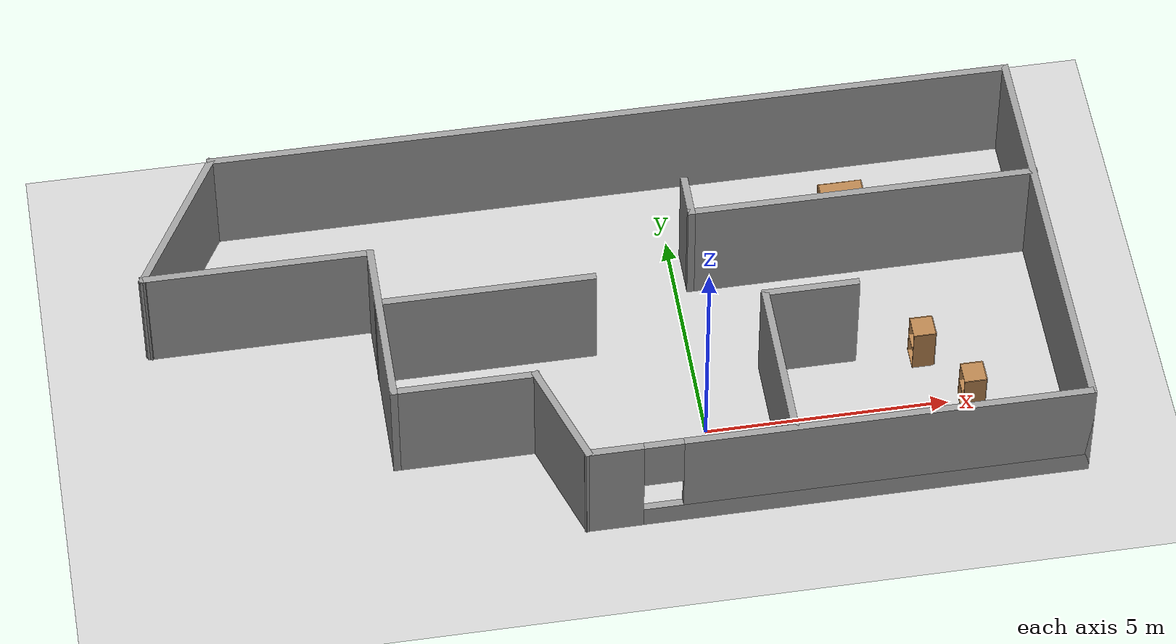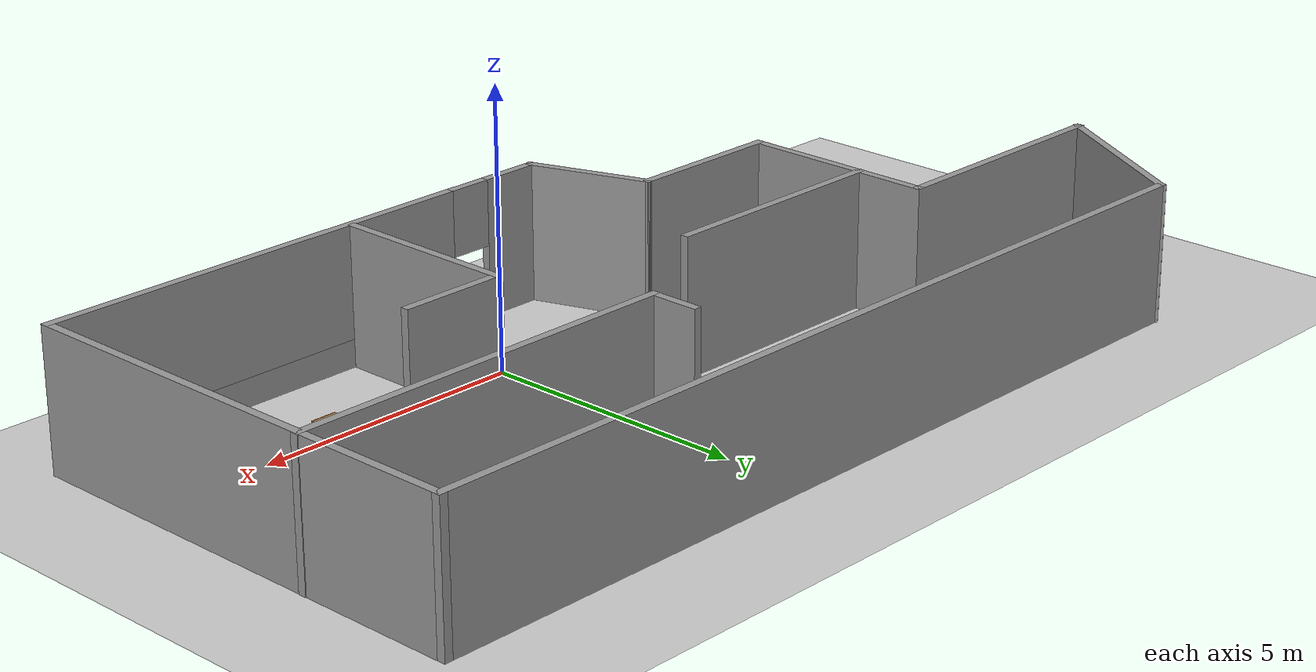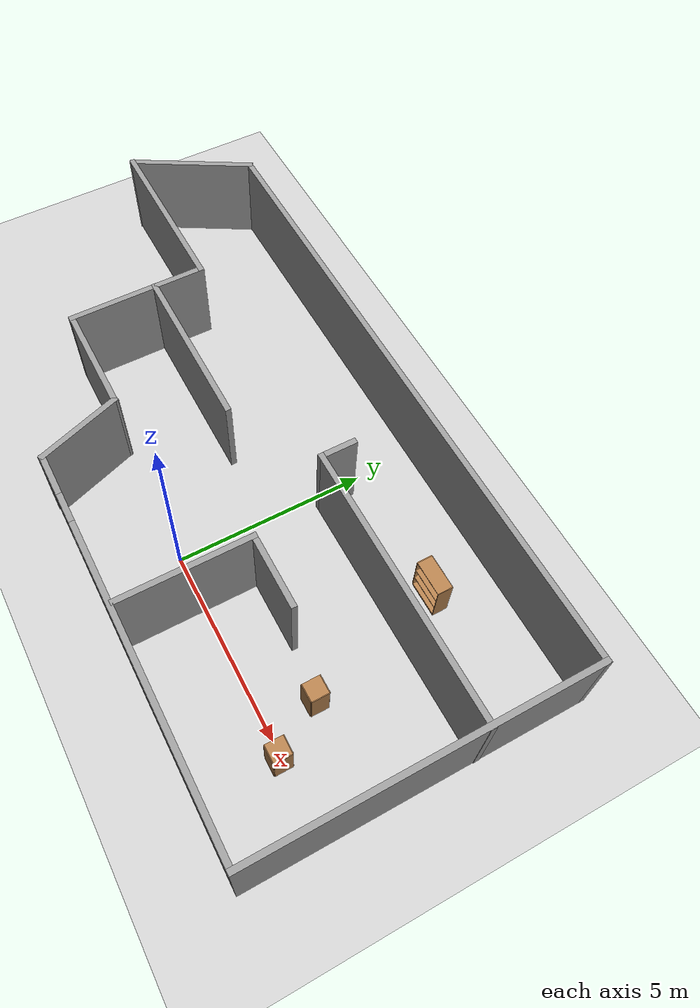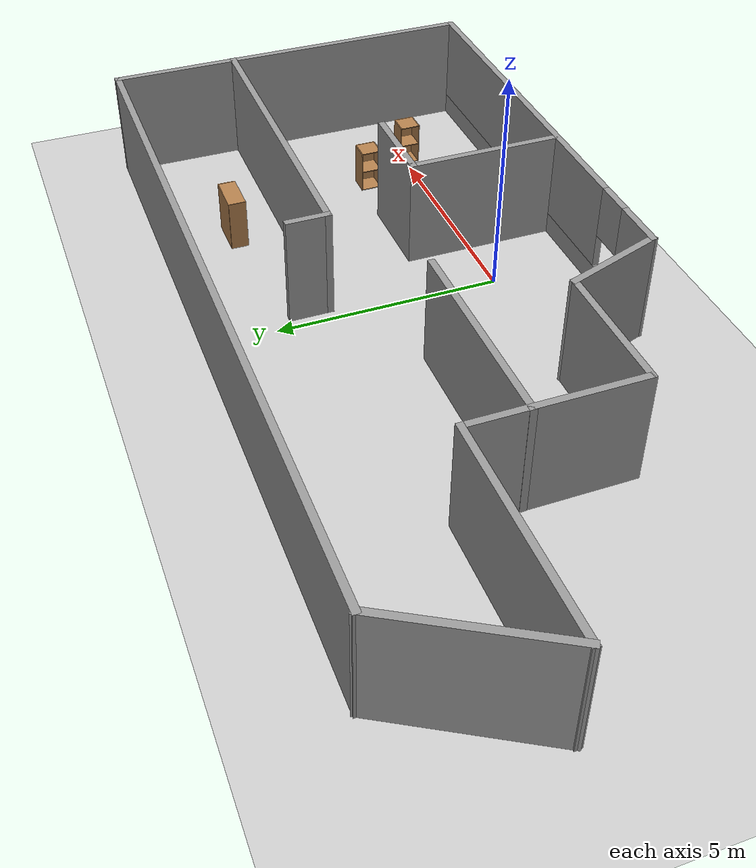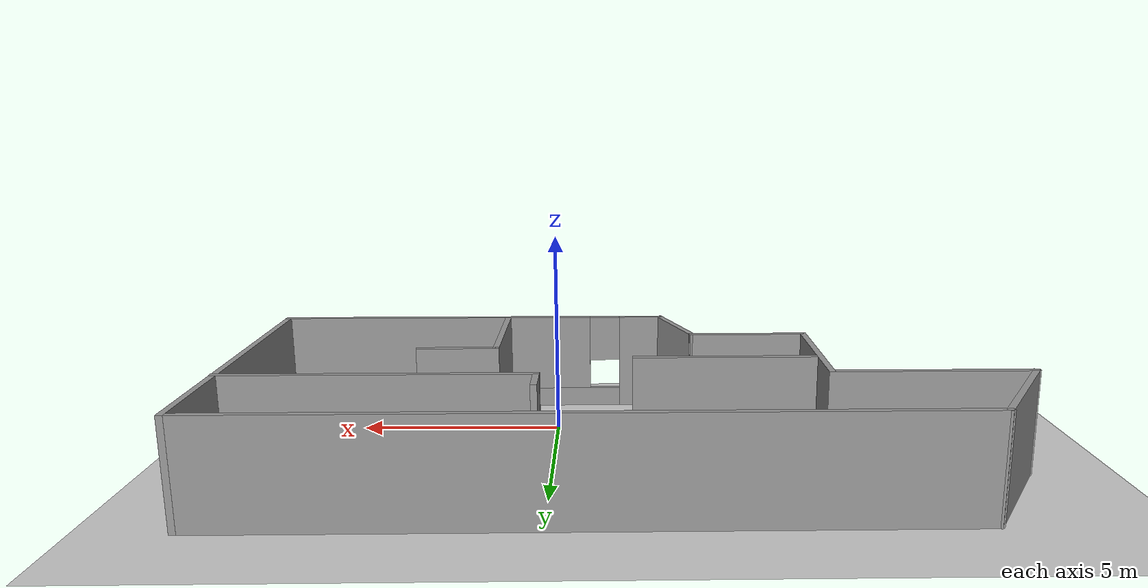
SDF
<sdf version="1.7">
 <world name="default">
  <light name="sun" type="directional">
   <pose>0 0 10 0 -0 0</pose>
   <diffuse>0.8 0.8 0.8 1</diffuse>
   <specular>0.2 0.2 0.2 1</specular>
   <attenuation>
    <range>1000</range>
    <constant>0.9</constant>
    <linear>0.01</linear>
    <quadratic>0.001</quadratic>
   </attenuation>
   <direction>-0.5 0.1 -0.9</direction>
   <spot><inner_angle>0</inner_angle><outer_angle>0</outer_angle><falloff>0</falloff></spot>
  </light>
  <model name="ground_plane">
   <static>1</static>
   <link name="link">
    <collision name="collision">
     <geometry><plane><normal>0 0 1</normal><size>100 100</size></plane></geometry>
     <surface><friction><ode><mu>100</mu><mu2>50</mu2></ode></friction></surface>
    </collision>
    <visual name="visual">
     <cast_shadows>0</cast_shadows>
     <geometry><plane><normal>0 0 1</normal><size>100 100</size></plane></geometry>
     <material>
      <script><uri>file://media/materials/scripts/gazebo.material</uri><name>Gazebo/Grey</name></script>
     </material>
    </visual>
   </link>
  </model>
  <gravity>0 0 -9.8</gravity>
  <magnetic_field>6e-06 2.3e-05 -4.2e-05</magnetic_field>
  <atmosphere type="adiabatic"/>
  <physics type="ode">
   <max_step_size>0.001</max_step_size>
   <real_time_factor>1</real_time_factor>
   <real_time_update_rate>1000</real_time_update_rate>
  </physics>
  <scene><ambient>0.4 0.4 0.4 1</ambient><background>0.7 0.7 0.7 1</background><shadows>1</shadows></scene>
  <audio><device>default</device></audio>
  <spherical_coordinates>
   <surface_model>EARTH_WGS84</surface_model>
   <latitude_deg>0</latitude_deg>
   <longitude_deg>0</longitude_deg>
   <elevation>0</elevation>
   <heading_deg>0</heading_deg>
  </spherical_coordinates>
  <model name="task1.world">
   <pose>-1.76242 2.27649 0.004845 0 -0 0</pose>
   <link name="Wall_0">
    <pose>4.09488 -4.30354 0 0 -0 0</pose>
    <visual name="Wall_0_Visual_0">
     <pose>-4.53371 0 1.25 0 -0 0</pose>
     <geometry><box><size>1.18259 0.15 2.5</size></box></geometry>
     <material>
      <script><uri>file://media/materials/scripts/gazebo.material</uri><name>Gazebo/Grey</name></script>
      <ambient>1 1 1 1</ambient>
     </material>
     <meta><layer>0</layer></meta>
    </visual>
    <collision name="Wall_0_Collision_0">
     <geometry><box><size>1.18259 0.15 2.5</size></box></geometry>
     <pose>-4.53371 0 1.25 0 -0 0</pose>
    </collision>
    <visual name="Wall_0_Visual_1">
     <pose>0.591295 0 0.25 0 -0 0</pose>
     <geometry><box><size>9.06741 0.15 0.5</size></box></geometry>
     <material>
      <script><uri>file://media/materials/scripts/gazebo.material</uri><name>Gazebo/Grey</name></script>
      <ambient>1 1 1 1</ambient>
     </material>
     <meta><layer>0</layer></meta>
    </visual>
    <collision name="Wall_0_Collision_1">
     <geometry><box><size>9.06741 0.15 0.5</size></box></geometry>
     <pose>0.591295 0 0.25 0 -0 0</pose>
    </collision>
    <visual name="Wall_0_Visual_2">
     <pose>0.991295 0 1.5 0 -0 0</pose>
     <geometry><box><size>8.26741 0.15 2</size></box></geometry>
     <material>
      <script><uri>file://media/materials/scripts/gazebo.material</uri><name>Gazebo/Grey</name></script>
      <ambient>1 1 1 1</ambient>
     </material>
     <meta><layer>0</layer></meta>
    </visual>
    <collision name="Wall_0_Collision_2">
     <geometry><box><size>8.26741 0.15 2</size></box></geometry>
     <pose>0.991295 0 1.5 0 -0 0</pose>
    </collision>
    <visual name="Wall_0_Visual_3">
     <pose>-3.54241 0 1.9 0 -0 0</pose>
     <geometry><box><size>0.8 0.15 1.2</size></box></geometry>
     <material>
      <script><uri>file://media/materials/scripts/gazebo.material</uri><name>Gazebo/Grey</name></script>
      <ambient>1 1 1 1</ambient>
     </material>
     <meta><layer>0</layer></meta>
    </visual>
    <collision name="Wall_0_Collision_3">
     <geometry><box><size>0.8 0.15 1.2</size></box></geometry>
     <pose>-3.54241 0 1.9 0 -0 0</pose>
    </collision>
   </link>
   <link name="Wall_1">
    <collision name="Wall_1_Collision">
     <geometry><box><size>8.75 0.15 2.5</size></box></geometry>
     <pose>0 0 1.25 0 -0 0</pose>
    </collision>
    <visual name="Wall_1_Visual">
     <pose>0 0 1.25 0 -0 0</pose>
     <geometry><box><size>8.75 0.15 2.5</size></box></geometry>
     <material>
      <script><uri>file://media/materials/scripts/gazebo.material</uri><name>Gazebo/Grey</name></script>
      <ambient>1 1 1 1</ambient>
     </material>
     <meta><layer>0</layer></meta>
    </visual>
    <pose>9.14488 -0.003537 0 0 -0 1.5708</pose>
   </link>
   <link name="Wall_11">
    <collision name="Wall_11_Collision">
     <geometry><box><size>7.25 0.15 2.5</size></box></geometry>
     <pose>0 0 1.25 0 -0 0</pose>
    </collision>
    <visual name="Wall_11_Visual">
     <pose>0 0 1.25 0 -0 0</pose>
     <geometry><box><size>7.25 0.15 2.5</size></box></geometry>
     <material>
      <script><uri>file://media/materials/scripts/gazebo.material</uri><name>Gazebo/Grey</name></script>
      <ambient>1 1 1 1</ambient>
     </material>
     <meta><layer>0</layer></meta>
    </visual>
    <pose>5.60758 1.45614 0 0 -0 3.14159</pose>
   </link>
   <link name="Wall_12">
    <collision name="Wall_12_Collision">
     <geometry><box><size>1 0.15 2.5</size></box></geometry>
     <pose>0 0 1.25 0 -0 0</pose>
    </collision>
    <visual name="Wall_12_Visual">
     <pose>0 0 1.25 0 -0 0</pose>
     <geometry><box><size>1 0.15 2.5</size></box></geometry>
     <material>
      <script><uri>file://media/materials/scripts/gazebo.material</uri><name>Gazebo/Grey</name></script>
      <ambient>1 1 1 1</ambient>
     </material>
     <meta><layer>0</layer></meta>
    </visual>
    <pose>2.05758 1.88114 0 0 -0 1.5708</pose>
   </link>
   <link name="Wall_14">
    <collision name="Wall_14_Collision">
     <geometry><box><size>3.5 0.15 2.5</size></box></geometry>
     <pose>0 0 1.25 0 -0 0</pose>
    </collision>
    <visual name="Wall_14_Visual">
     <pose>0 0 1.25 0 -0 0</pose>
     <geometry><box><size>3.5 0.15 2.5</size></box></geometry>
     <material>
      <script><uri>file://media/materials/scripts/gazebo.material</uri><name>Gazebo/Grey</name></script>
      <ambient>1 1 1 1</ambient>
     </material>
     <meta><layer>0</layer></meta>
    </visual>
    <pose>3.17598 -2.53564 0 0 -0 1.5708</pose>
   </link>
   <link name="Wall_15">
    <collision name="Wall_15_Collision">
     <geometry><box><size>2 0.15 2.5</size></box></geometry>
     <pose>0 0 1.25 0 -0 0</pose>
    </collision>
    <visual name="Wall_15_Visual">
     <pose>0 0 1.25 0 -0 0</pose>
     <geometry><box><size>2 0.15 2.5</size></box></geometry>
     <material>
      <script><uri>file://media/materials/scripts/gazebo.material</uri><name>Gazebo/Grey</name></script>
      <ambient>1 1 1 1</ambient>
     </material>
     <meta><layer>0</layer></meta>
    </visual>
    <pose>4.10098 -0.860638 0 0 -0 0</pose>
   </link>
   <link name="Wall_17">
    <collision name="Wall_17_Collision">
     <geometry><box><size>4.5 0.15 2.5</size></box></geometry>
     <pose>0 0 1.25 0 -0 0</pose>
    </collision>
    <visual name="Wall_17_Visual">
     <pose>0 0 1.25 0 -0 0</pose>
     <geometry><box><size>4.5 0.15 2.5</size></box></geometry>
     <material>
      <script><uri>file://media/materials/scripts/gazebo.material</uri><name>Gazebo/Grey</name></script>
      <ambient>1 1 1 1</ambient>
     </material>
     <meta><layer>0</layer></meta>
    </visual>
    <pose>-2.36214 0.091917 0 0 -0 0</pose>
   </link>
   <link name="Wall_2">
    <collision name="Wall_2_Collision">
     <geometry><box><size>16.75 0.15 2.5</size></box></geometry>
     <pose>0 0 1.25 0 -0 0</pose>
    </collision>
    <visual name="Wall_2_Visual">
     <pose>0 0 1.25 0 -0 0</pose>
     <geometry><box><size>16.75 0.15 2.5</size></box></geometry>
     <material>
      <script><uri>file://media/materials/scripts/gazebo.material</uri><name>Gazebo/Grey</name></script>
      <ambient>1 1 1 1</ambient>
     </material>
     <meta><layer>0</layer></meta>
    </visual>
    <pose>0.844876 4.29646 0 0 -0 3.14159</pose>
   </link>
   <link name="Wall_3">
    <collision name="Wall_3_Collision">
     <geometry><box><size>3.5 0.15 2.5</size></box></geometry>
     <pose>0 0 1.25 0 -0 0</pose>
    </collision>
    <visual name="Wall_3_Visual">
     <pose>0 0 1.25 0 -0 0</pose>
     <geometry><box><size>3.5 0.15 2.5</size></box></geometry>
     <material>
      <script><uri>file://media/materials/scripts/gazebo.material</uri><name>Gazebo/Grey</name></script>
      <ambient>1 1 1 1</ambient>
     </material>
     <meta><layer>0</layer></meta>
    </visual>
    <pose>-8.29262 2.84587 0 0 -0 -2.0944</pose>
   </link>
   <link name="Wall_4">
    <collision name="Wall_4_Collision">
     <geometry><box><size>4.75 0.15 2.5</size></box></geometry>
     <pose>0 0 1.25 0 -0 0</pose>
    </collision>
    <visual name="Wall_4_Visual">
     <pose>0 0 1.25 0 -0 0</pose>
     <geometry><box><size>4.75 0.15 2.5</size></box></geometry>
     <material>
      <script><uri>file://media/materials/scripts/gazebo.material</uri><name>Gazebo/Grey</name></script>
      <ambient>1 1 1 1</ambient>
     </material>
     <meta><layer>0</layer></meta>
    </visual>
    <pose>-6.83012 1.39528 0 0 -0 0</pose>
   </link>
   <link name="Wall_5">
    <collision name="Wall_5_Collision">
     <geometry><box><size>3.75 0.15 2.5</size></box></geometry>
     <pose>0 0 1.25 0 -0 0</pose>
    </collision>
    <visual name="Wall_5_Visual">
     <pose>0 0 1.25 0 -0 0</pose>
     <geometry><box><size>3.75 0.15 2.5</size></box></geometry>
     <material>
      <script><uri>file://media/materials/scripts/gazebo.material</uri><name>Gazebo/Grey</name></script>
      <ambient>1 1 1 1</ambient>
     </material>
     <meta><layer>0</layer></meta>
    </visual>
    <pose>-4.53012 -0.404722 0 0 -0 -1.5708</pose>
   </link>
   <link name="Wall_6">
    <collision name="Wall_6_Collision">
     <geometry><box><size>3 0.15 2.5</size></box></geometry>
     <pose>0 0 1.25 0 -0 0</pose>
    </collision>
    <visual name="Wall_6_Visual">
     <pose>0 0 1.25 0 -0 0</pose>
     <geometry><box><size>3 0.15 2.5</size></box></geometry>
     <material>
      <script><uri>file://media/materials/scripts/gazebo.material</uri><name>Gazebo/Grey</name></script>
      <ambient>1 1 1 1</ambient>
     </material>
     <meta><layer>0</layer></meta>
    </visual>
    <pose>-3.10512 -2.20472 0 0 -0 0</pose>
   </link>
   <link name="Wall_9">
    <collision name="Wall_9_Collision">
     <geometry><box><size>2.37051 0.15 2.5</size></box></geometry>
     <pose>0 0 1.25 0 -0 0</pose>
    </collision>
    <visual name="Wall_9_Visual">
     <pose>0 0 1.25 0 -0 0</pose>
     <geometry><box><size>2.37051 0.15 2.5</size></box></geometry>
     <material>
      <script><uri>file://media/materials/scripts/gazebo.material</uri><name>Gazebo/Grey</name></script>
      <ambient>1 1 1 1</ambient>
     </material>
     <meta><layer>0</layer></meta>
    </visual>
    <pose>-1.31762 -3.25413 0 0 -0 -1.2382</pose>
   </link>
   <static>1</static>
  </model>
  <model name="cabinet">
   <static>1</static>
   <link name="cabinet_bottom_plate">
    <inertial>
     <pose>0 0 -1 0 -0 0</pose>
     <inertia><ixx>2.05</ixx><ixy>0</ixy><ixz>0</ixz><iyy>2.05</iyy><iyz>0</iyz><izz>2.05</izz></inertia>
     <mass>25</mass>
    </inertial>
    <collision name="cabinet_bottom_plate_geom">
     <pose>0 0 0.01 0 -0 0</pose>
     <geometry><box><size>0.45 0.45 0.02</size></box></geometry>
    </collision>
    <visual name="cabinet_bottom_plate_geom_visual">
     <pose>0 0 0.01 0 -0 0</pose>
     <geometry><box><size>0.45 0.45 0.02</size></box></geometry>
     <material>
      <script><uri>file://media/materials/scripts/gazebo.material</uri><name>Gazebo/Wood</name></script>
     </material>
    </visual>
    <collision name="cabinet_bottom_plate_geom_cabinet_back_plate">
     <pose>0.235 0 0.51 0 -0 0</pose>
     <geometry><box><size>0.02 0.45 1.02</size></box></geometry>
    </collision>
    <visual name="cabinet_bottom_plate_geom_cabinet_back_plate_visual">
     <pose>0.235 0 0.51 0 -0 0</pose>
     <geometry><box><size>0.02 0.45 1.02</size></box></geometry>
     <material>
      <script><uri>file://media/materials/scripts/gazebo.material</uri><name>Gazebo/Wood</name></script>
     </material>
    </visual>
    <collision name="cabinet_bottom_plate_geom_cabinet_left_plate">
     <pose>0 0.235 0.51 0 -0 0</pose>
     <geometry><box><size>0.45 0.02 1.02</size></box></geometry>
    </collision>
    <visual name="cabinet_bottom_plate_geom_cabinet_left_plate_visual">
     <pose>0 0.235 0.51 0 -0 0</pose>
     <geometry><box><size>0.45 0.02 1.02</size></box></geometry>
     <material>
      <script><uri>file://media/materials/scripts/gazebo.material</uri><name>Gazebo/Wood</name></script>
     </material>
    </visual>
    <collision name="cabinet_bottom_plate_geom_cabinet_middle_plate">
     <pose>0 0 0.51 0 -0 0</pose>
     <geometry><box><size>0.45 0.45 0.02</size></box></geometry>
    </collision>
    <visual name="cabinet_bottom_plate_geom_cabinet_middle_plate_visual">
     <pose>0 0 0.51 0 -0 0</pose>
     <geometry><box><size>0.45 0.45 0.02</size></box></geometry>
     <material>
      <script><uri>file://media/materials/scripts/gazebo.material</uri><name>Gazebo/Wood</name></script>
     </material>
    </visual>
    <collision name="cabinet_bottom_plate_geom_cabinet_right_plate">
     <pose>0 -0.235 0.51 0 -0 0</pose>
     <geometry><box><size>0.45 0.02 1.02</size></box></geometry>
    </collision>
    <visual name="cabinet_bottom_plate_geom_cabinet_right_plate_visual">
     <pose>0 -0.235 0.51 0 -0 0</pose>
     <geometry><box><size>0.45 0.02 1.02</size></box></geometry>
     <material>
      <script><uri>file://media/materials/scripts/gazebo.material</uri><name>Gazebo/Wood</name></script>
     </material>
    </visual>
    <collision name="cabinet_bottom_plate_geom_cabinet_top_plate">
     <pose>0 0 1.01 0 -0 0</pose>
     <geometry><box><size>0.45 0.45 0.02</size></box></geometry>
    </collision>
    <visual name="cabinet_bottom_plate_geom_cabinet_top_plate_visual">
     <pose>0 0 1.01 0 -0 0</pose>
     <geometry><box><size>0.45 0.45 0.02</size></box></geometry>
     <material>
      <script><uri>file://media/materials/scripts/gazebo.material</uri><name>Gazebo/Wood</name></script>
     </material>
    </visual>
   </link>
   <pose>5.45292 -0.082539 0 0 -0 0</pose>
  </model>
  <model name="bookshelf">
   <static>1</static>
   <link name="link">
    <inertial><mass>1</mass></inertial>
    <collision name="back">
     <pose>0 0.005 0.6 0 -0 0</pose>
     <geometry><box><size>0.9 0.01 1.2</size></box></geometry>
    </collision>
    <visual name="visual1">
     <pose>0 0.005 0.6 0 -0 0</pose>
     <geometry><box><size>0.9 0.01 1.2</size></box></geometry>
     <material>
      <script><uri>file://media/materials/scripts/gazebo.material</uri><name>Gazebo/Wood</name></script>
     </material>
    </visual>
    <collision name="left_side">
     <pose>0.45 -0.195 0.6 0 -0 0</pose>
     <geometry><box><size>0.02 0.4 1.2</size></box></geometry>
    </collision>
    <visual name="visual2">
     <pose>0.45 -0.195 0.6 0 -0 0</pose>
     <geometry><box><size>0.02 0.4 1.2</size></box></geometry>
     <material>
      <script><uri>file://media/materials/scripts/gazebo.material</uri><name>Gazebo/Wood</name></script>
     </material>
    </visual>
    <collision name="right_side">
     <pose>-0.45 -0.195 0.6 0 -0 0</pose>
     <geometry><box><size>0.02 0.4 1.2</size></box></geometry>
    </collision>
    <visual name="visual3">
     <pose>-0.45 -0.195 0.6 0 -0 0</pose>
     <geometry><box><size>0.02 0.4 1.2</size></box></geometry>
     <material>
      <script><uri>file://media/materials/scripts/gazebo.material</uri><name>Gazebo/Wood</name></script>
     </material>
    </visual>
    <collision name="bottom">
     <pose>0 -0.195 0.03 0 -0 0</pose>
     <geometry><box><size>0.88 0.4 0.06</size></box></geometry>
    </collision>
    <visual name="visual4">
     <pose>0 -0.195 0.03 0 -0 0</pose>
     <geometry><box><size>0.88 0.4 0.06</size></box></geometry>
     <material>
      <script><uri>file://media/materials/scripts/gazebo.material</uri><name>Gazebo/Wood</name></script>
     </material>
    </visual>
    <collision name="top">
     <pose>0 -0.195 1.19 0 -0 0</pose>
     <geometry><box><size>0.88 0.4 0.02</size></box></geometry>
    </collision>
    <visual name="visual5">
     <pose>0 -0.195 1.19 0 -0 0</pose>
     <geometry><box><size>0.88 0.4 0.02</size></box></geometry>
     <material>
      <script><uri>file://media/materials/scripts/gazebo.material</uri><name>Gazebo/Wood</name></script>
     </material>
    </visual>
    <collision name="low_shelf">
     <pose>0 -0.195 0.43 0 -0 0</pose>
     <geometry><box><size>0.88 0.4 0.02</size></box></geometry>
    </collision>
    <visual name="visual6">
     <pose>0 -0.195 0.43 0 -0 0</pose>
     <geometry><box><size>0.88 0.4 0.02</size></box></geometry>
     <material>
      <script><uri>file://media/materials/scripts/gazebo.material</uri><name>Gazebo/Wood</name></script>
     </material>
    </visual>
    <collision name="high_shelf">
     <pose>0 -0.195 0.8 0 -0 0</pose>
     <geometry><box><size>0.88 0.4 0.02</size></box></geometry>
    </collision>
    <visual name="visual7">
     <pose>0 -0.195 0.8 0 -0 0</pose>
     <geometry><box><size>0.88 0.4 0.02</size></box></geometry>
     <material>
      <script><uri>file://media/materials/scripts/gazebo.material</uri><name>Gazebo/Wood</name></script>
     </material>
    </visual>
   </link>
   <pose>3.65448 5.09787 0 0 -0 0</pose>
  </model>
  <model name="cabinet_0">
   <static>1</static>
   <link name="cabinet_bottom_plate">
    <inertial>
     <pose>0 0 -1 0 -0 0</pose>
     <inertia><ixx>2.05</ixx><ixy>0</ixy><ixz>0</ixz><iyy>2.05</iyy><iyz>0</iyz><izz>2.05</izz></inertia>
     <mass>25</mass>
    </inertial>
    <collision name="cabinet_bottom_plate_geom">
     <pose>0 0 0.01 0 -0 0</pose>
     <geometry><box><size>0.45 0.45 0.02</size></box></geometry>
    </collision>
    <visual name="cabinet_bottom_plate_geom_visual">
     <pose>0 0 0.01 0 -0 0</pose>
     <geometry><box><size>0.45 0.45 0.02</size></box></geometry>
     <material>
      <script><uri>file://media/materials/scripts/gazebo.material</uri><name>Gazebo/Wood</name></script>
     </material>
    </visual>
    <collision name="cabinet_bottom_plate_geom_cabinet_back_plate">
     <pose>0.235 0 0.51 0 -0 0</pose>
     <geometry><box><size>0.02 0.45 1.02</size></box></geometry>
    </collision>
    <visual name="cabinet_bottom_plate_geom_cabinet_back_plate_visual">
     <pose>0.235 0 0.51 0 -0 0</pose>
     <geometry><box><size>0.02 0.45 1.02</size></box></geometry>
     <material>
      <script><uri>file://media/materials/scripts/gazebo.material</uri><name>Gazebo/Wood</name></script>
     </material>
    </visual>
    <collision name="cabinet_bottom_plate_geom_cabinet_left_plate">
     <pose>0 0.235 0.51 0 -0 0</pose>
     <geometry><box><size>0.45 0.02 1.02</size></box></geometry>
    </collision>
    <visual name="cabinet_bottom_plate_geom_cabinet_left_plate_visual">
     <pose>0 0.235 0.51 0 -0 0</pose>
     <geometry><box><size>0.45 0.02 1.02</size></box></geometry>
     <material>
      <script><uri>file://media/materials/scripts/gazebo.material</uri><name>Gazebo/Wood</name></script>
     </material>
    </visual>
    <collision name="cabinet_bottom_plate_geom_cabinet_middle_plate">
     <pose>0 0 0.51 0 -0 0</pose>
     <geometry><box><size>0.45 0.45 0.02</size></box></geometry>
    </collision>
    <visual name="cabinet_bottom_plate_geom_cabinet_middle_plate_visual">
     <pose>0 0 0.51 0 -0 0</pose>
     <geometry><box><size>0.45 0.45 0.02</size></box></geometry>
     <material>
      <script><uri>file://media/materials/scripts/gazebo.material</uri><name>Gazebo/Wood</name></script>
     </material>
    </visual>
    <collision name="cabinet_bottom_plate_geom_cabinet_right_plate">
     <pose>0 -0.235 0.51 0 -0 0</pose>
     <geometry><box><size>0.45 0.02 1.02</size></box></geometry>
    </collision>
    <visual name="cabinet_bottom_plate_geom_cabinet_right_plate_visual">
     <pose>0 -0.235 0.51 0 -0 0</pose>
     <geometry><box><size>0.45 0.02 1.02</size></box></geometry>
     <material>
      <script><uri>file://media/materials/scripts/gazebo.material</uri><name>Gazebo/Wood</name></script>
     </material>
    </visual>
    <collision name="cabinet_bottom_plate_geom_cabinet_top_plate">
     <pose>0 0 1.01 0 -0 0</pose>
     <geometry><box><size>0.45 0.45 0.02</size></box></geometry>
    </collision>
    <visual name="cabinet_bottom_plate_geom_cabinet_top_plate_visual">
     <pose>0 0 1.01 0 -0 0</pose>
     <geometry><box><size>0.45 0.45 0.02</size></box></geometry>
     <material>
      <script><uri>file://media/materials/scripts/gazebo.material</uri><name>Gazebo/Wood</name></script>
     </material>
    </visual>
   </link>
   <pose>4.66783 1.23163 0 0 -0 0</pose>
  </model>
 </world>
</sdf>
